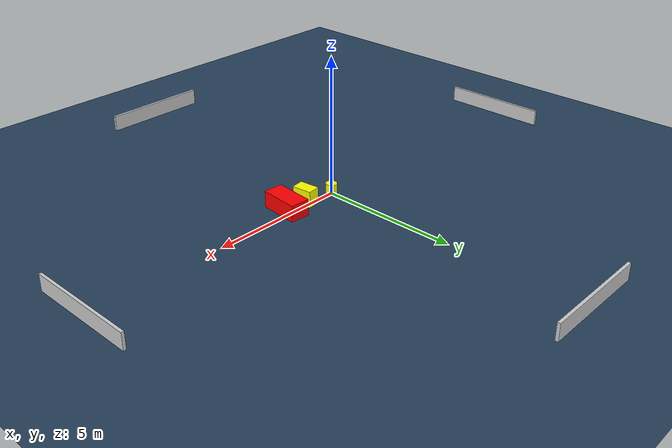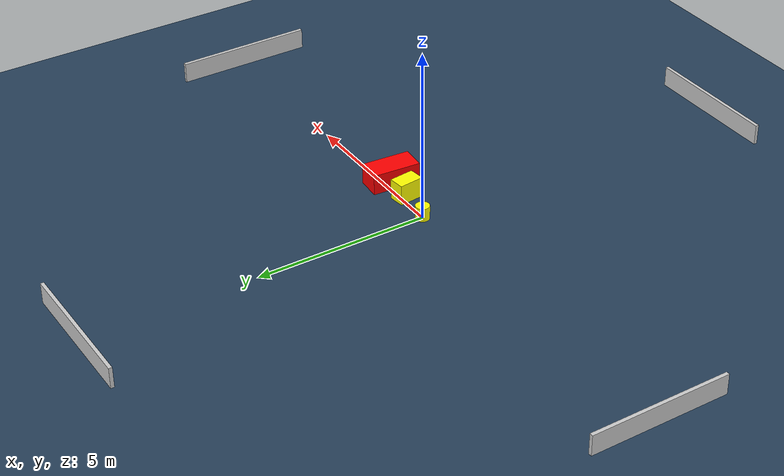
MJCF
<?xml version="1.0" ?>
<mujoco model="generated_environment">
  <option timestep="0.01" integrator="RK4" cone="elliptic"/>
  <default>
    <geom density="1"/>
  </default>
  <asset>
    <texture builtin="gradient" height="3072" name="skybox" rgb1="0.3 0.5 0.7" rgb2="0 0 0" type="skybox" width="512"/>
    <texture builtin="checker" height="300" name="groundplane" rgb1="0.2 0.3 0.4" rgb2="0.1 0.2 0.3" type="2d" width="300"/>
    <material name="groundplane" reflectance="0.2" texrepeat="5 5" texture="groundplane"/>
  </asset>
  <worldbody>
    <light dir="0 0 -1" directional="true" pos="0 0 1.5"/>
    <geom condim="3" friction="0.5 0.005 0.001" material="groundplane" name="floor" pos="0 0 0" size="0 0 0.05" type="plane"/>
    <body name="walls">
      <geom name="wall_1" condim="4" pos="-10.0 0.0 0.3" rgba="0.800000011920929 0.800000011920929 0.800000011920929 1.0" size="0.05 2.0 0.3" type="box"/>
      <geom name="wall_2" condim="4" pos="10.0 0.0 0.3" rgba="0.800000011920929 0.800000011920929 0.800000011920929 1.0" size="0.05 2.0 0.3" type="box"/>
      <geom name="wall_3" condim="4" pos="0.0 -10.0 0.3" rgba="0.800000011920929 0.800000011920929 0.800000011920929 1.0" size="2.0 0.05 0.3" type="box"/>
      <geom name="wall_4" condim="4" pos="0.0 10.0 0.3" rgba="0.800000011920929 0.800000011920929 0.800000011920929 1.0" size="2.0 0.05 0.3" type="box"/>
    </body>
    <body name="robot">
      <joint name="joint_x" type="slide" pos="0 0 0" axis="1 0 0"/>
      <joint name="joint_y" type="slide" pos="0 0 0" axis="0 1 0"/>
      <geom name="robot" type="cylinder" pos="0.0 0.0 0.2" size="0.2 0.2 0.0" mass="5.0" friction="1.0 0.005 0.0001" condim="4" rgba="1.0 1.0 0.0 1.0"/>
    </body>
    <body name="obstacle_1_movable">
      <geom name="obstacle_1_movable" condim="4" pos="1.0842318800845459 -0.18245548790819677 0.3" euler="0 0 186.37247094148518" friction="0.0 0.005 0.001" rgba="1.0 1.0 0.0 1.0" size="0.2292300504363194 0.36131836801870865 0.3" type="box" mass="0.1"/>
      <joint type="free"/>
    </body>
    <body name="obstacle_2_static">
      <geom name="obstacle_2_static" condim="4" pos="1.9451590861831938 -0.2296112691813636 0.3" euler="0 0 265.3175498840818" friction="0.0 0.005 0.001" rgba="1.0 0.0 0.0 1.0" size="0.7053610403691444 0.3525152615293645 0.3" type="box"/>
    </body>
  </worldbody>
  <actuator>
    <motor name="actuator_x" joint="joint_x" gear="1" ctrlrange="-1 1"/>
    <motor name="actuator_y" joint="joint_y" gear="1" ctrlrange="-1 1"/>
  </actuator>
</mujoco>
